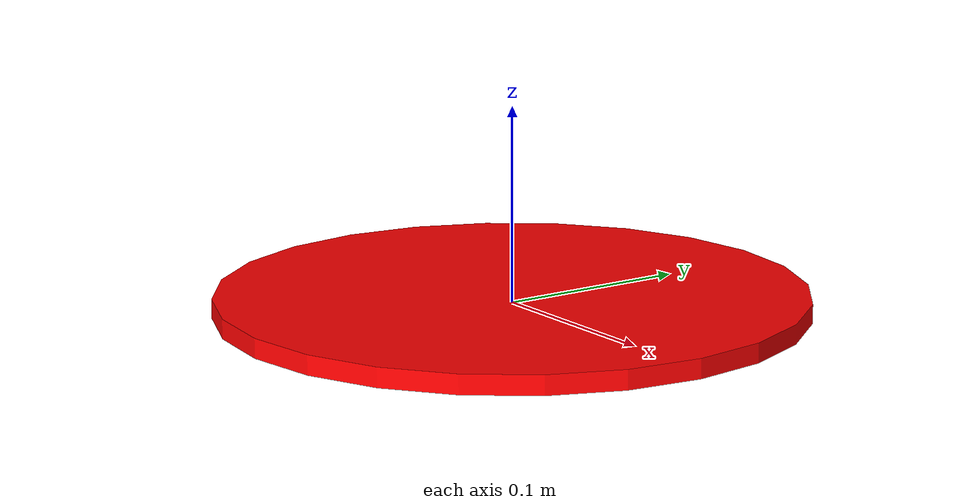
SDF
<?xml version='1.0'?>
<sdf version='1.6'>
  <model name='obstacle_box'>
    <pose frame=''>0 0 0 0 -0 -1.5708</pose>
    <link name='obstacle_box'>
      <visual name='obstacle_box'>
        <pose frame=''>0 0 0.0005 0 -0 0</pose>
        <geometry>
          <cylinder>
            <radius>0.15</radius>
            <length>0.01</length>
          </cylinder>
        </geometry>
        <material>
          <script>
            <uri>file://media/materials/scripts/gazebo.material</uri>
            <name>Gazebo/Grey</name>
          </script>
          <ambient>1 0 0 1</ambient>
        </material>
      </visual>
      <pose frame=''>0 0 0 0 -0 0</pose>
    </link>
    <static>1</static>
  </model>
</sdf>
